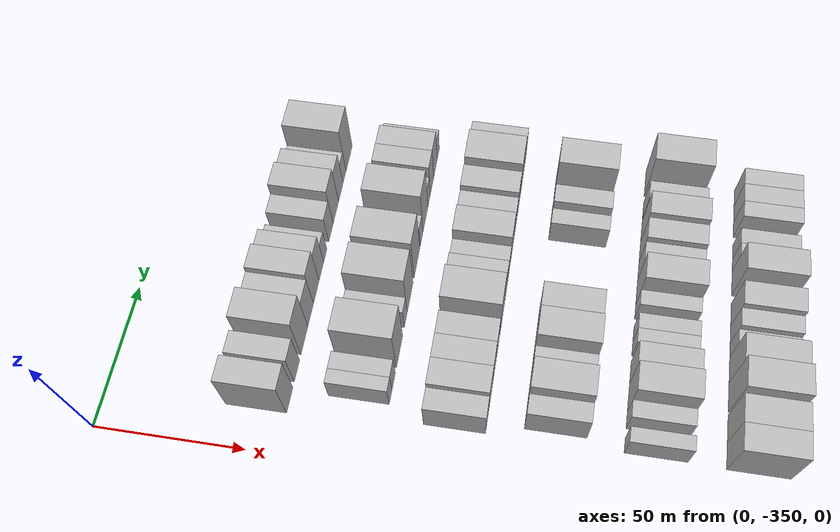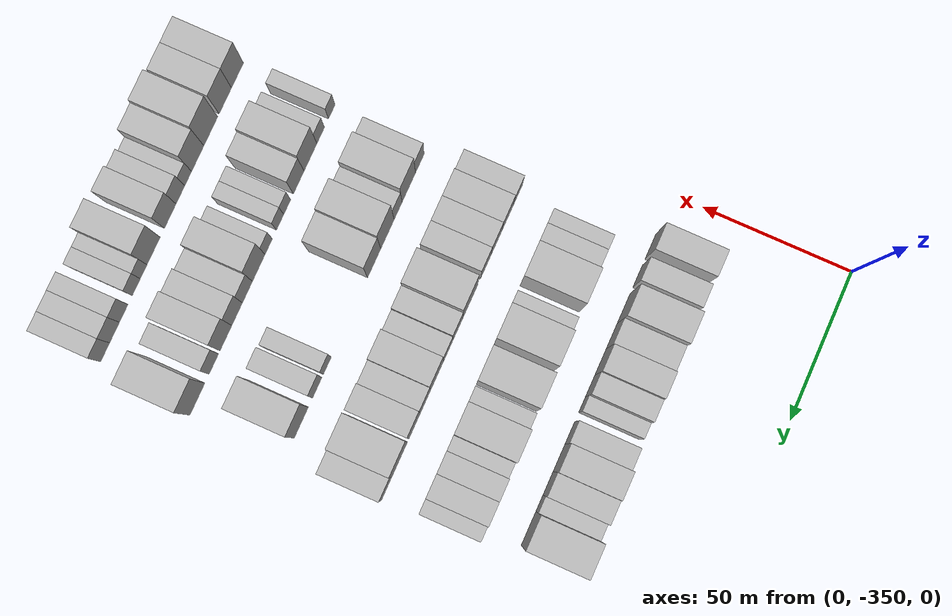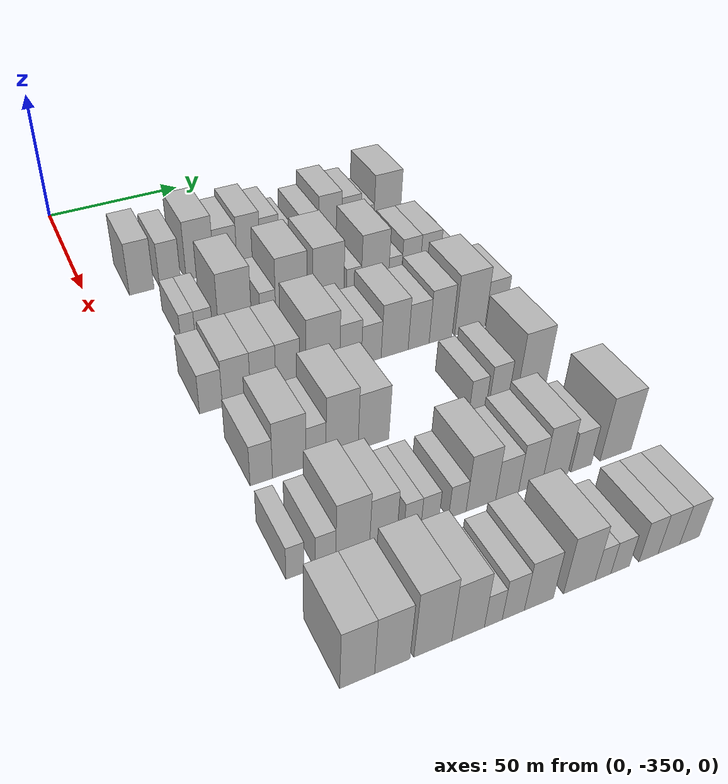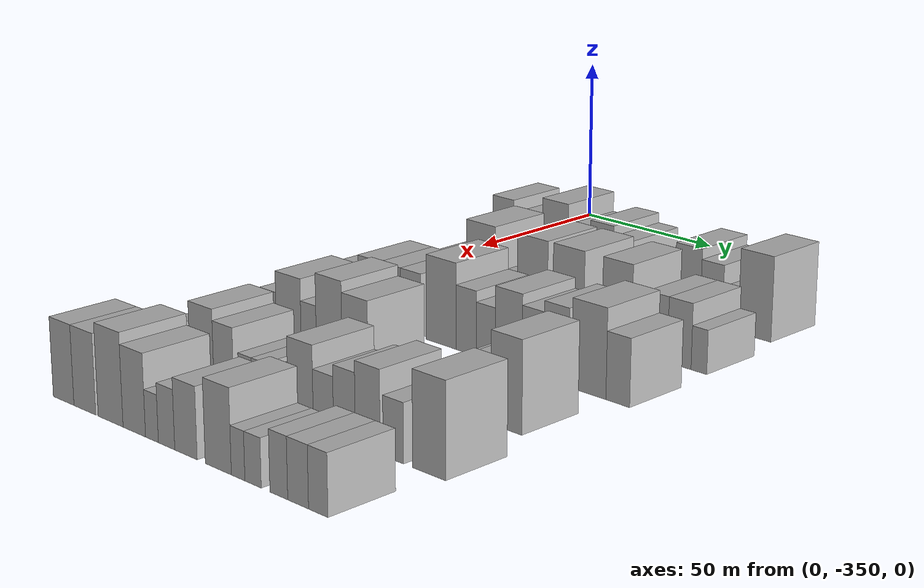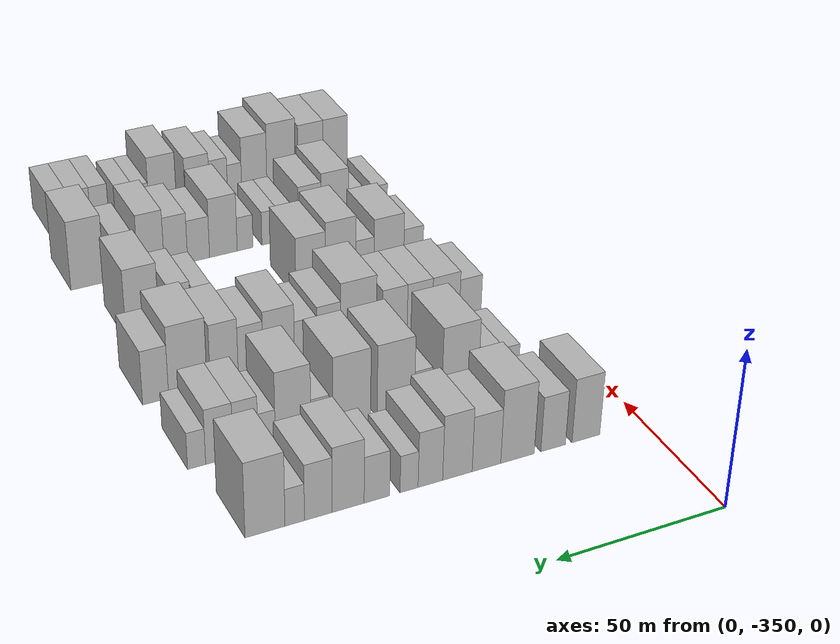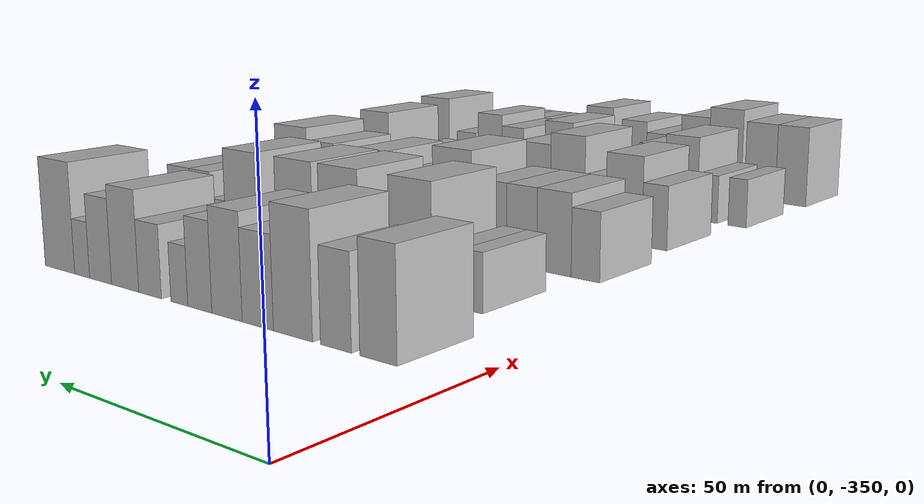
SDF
<sdf version="1.6">
 <world name="default">
  <model name="building_25">
   <static>1</static>
   <pose>50.0000 -331.8729 0 0.000000 0.000000 0.000000</pose>
   <link name="link">
    <pose>0 0 10.50 0 0 0</pose>
    <collision name="collision"><geometry><box><size>20.0000 8.7090 21.0000</size></box></geometry></collision>
    <visual name="visual">
     <cast_shadows>0</cast_shadows>
     <geometry><box><size>20.0000 8.7090 21.0000</size></box></geometry>
     <material>
      <script>
       <uri>model://HANNAS_wall/materials/scripts</uri>
       <uri>model://HANNAS_wall/materials/textures</uri>
       <name>vrc/HANNAS_wall</name>
      </script>
     </material>
    </visual>
   </link>
  </model>
  <model name="building_26">
   <static>1</static>
   <pose>50.0000 -321.7021 0 0.000000 0.000000 0.000000</pose>
   <link name="link">
    <pose>0 0 9.00 0 0 0</pose>
    <collision name="collision"><geometry><box><size>20.0000 7.6327 18.0000</size></box></geometry></collision>
    <visual name="visual">
     <cast_shadows>0</cast_shadows>
     <geometry><box><size>20.0000 7.6327 18.0000</size></box></geometry>
     <material>
      <script>
       <uri>model://HANNAS_wall/materials/scripts</uri>
       <uri>model://HANNAS_wall/materials/textures</uri>
       <name>vrc/HANNAS_wall</name>
      </script>
     </material>
    </visual>
   </link>
  </model>
  <model name="building_27">
   <static>1</static>
   <pose>50.0000 -310.7691 0 0.000000 0.000000 0.000000</pose>
   <link name="link">
    <pose>0 0 12.00 0 0 0</pose>
    <collision name="collision"><geometry><box><size>20.0000 10.2333 24.0000</size></box></geometry></collision>
    <visual name="visual">
     <cast_shadows>0</cast_shadows>
     <geometry><box><size>20.0000 10.2333 24.0000</size></box></geometry>
     <material>
      <script>
       <uri>model://HANNAS_wall/materials/scripts</uri>
       <uri>model://HANNAS_wall/materials/textures</uri>
       <name>vrc/HANNAS_wall</name>
      </script>
     </material>
    </visual>
   </link>
  </model>
  <model name="building_28">
   <static>1</static>
   <pose>50.0000 -301.3452 0 0.000000 0.000000 0.000000</pose>
   <link name="link">
    <pose>0 0 9.00 0 0 0</pose>
    <collision name="collision"><geometry><box><size>20.0000 8.6145 18.0000</size></box></geometry></collision>
    <visual name="visual">
     <cast_shadows>0</cast_shadows>
     <geometry><box><size>20.0000 8.6145 18.0000</size></box></geometry>
     <material>
      <script>
       <uri>model://HANNAS_wall/materials/scripts</uri>
       <uri>model://HANNAS_wall/materials/textures</uri>
       <name>vrc/HANNAS_wall</name>
      </script>
     </material>
    </visual>
   </link>
  </model>
  <model name="building_29">
   <static>1</static>
   <pose>50.0000 -292.6635 0 0.000000 0.000000 0.000000</pose>
   <link name="link">
    <pose>0 0 10.50 0 0 0</pose>
    <collision name="collision"><geometry><box><size>20.0000 8.7487 21.0000</size></box></geometry></collision>
    <visual name="visual">
     <cast_shadows>0</cast_shadows>
     <geometry><box><size>20.0000 8.7487 21.0000</size></box></geometry>
     <material>
      <script>
       <uri>model://HANNAS_wall/materials/scripts</uri>
       <uri>model://HANNAS_wall/materials/textures</uri>
       <name>vrc/HANNAS_wall</name>
      </script>
     </material>
    </visual>
   </link>
  </model>
  <model name="building_30">
   <static>1</static>
   <pose>50.0000 -284.6700 0 0.000000 0.000000 0.000000</pose>
   <link name="link">
    <pose>0 0 9.00 0 0 0</pose>
    <collision name="collision"><geometry><box><size>20.0000 7.2383 18.0000</size></box></geometry></collision>
    <visual name="visual">
     <cast_shadows>0</cast_shadows>
     <geometry><box><size>20.0000 7.2383 18.0000</size></box></geometry>
     <material>
      <script>
       <uri>model://HANNAS_wall/materials/scripts</uri>
       <uri>model://HANNAS_wall/materials/textures</uri>
       <name>vrc/HANNAS_wall</name>
      </script>
     </material>
    </visual>
   </link>
  </model>
  <model name="building_31">
   <static>1</static>
   <pose>50.0000 -278.4286 0 0.000000 0.000000 0.000000</pose>
   <link name="link">
    <pose>0 0 6.00 0 0 0</pose>
    <collision name="collision"><geometry><box><size>20.0000 5.2446 12.0000</size></box></geometry></collision>
    <visual name="visual">
     <cast_shadows>0</cast_shadows>
     <geometry><box><size>20.0000 5.2446 12.0000</size></box></geometry>
     <material>
      <script>
       <uri>model://HANNAS_wall/materials/scripts</uri>
       <uri>model://HANNAS_wall/materials/textures</uri>
       <name>vrc/HANNAS_wall</name>
      </script>
     </material>
    </visual>
   </link>
  </model>
  <model name="building_32">
   <static>1</static>
   <pose>50.0000 -269.1269 0 0.000000 0.000000 0.000000</pose>
   <link name="link">
    <pose>0 0 7.50 0 0 0</pose>
    <collision name="collision"><geometry><box><size>20.0000 7.3586 15.0000</size></box></geometry></collision>
    <visual name="visual">
     <cast_shadows>0</cast_shadows>
     <geometry><box><size>20.0000 7.3586 15.0000</size></box></geometry>
     <material>
      <script>
       <uri>model://HANNAS_wall/materials/scripts</uri>
       <uri>model://HANNAS_wall/materials/textures</uri>
       <name>vrc/HANNAS_wall</name>
      </script>
     </material>
    </visual>
   </link>
  </model>
  <model name="building_33">
   <static>1</static>
   <pose>50.0000 -260.8654 0 0.000000 0.000000 0.000000</pose>
   <link name="link">
    <pose>0 0 10.50 0 0 0</pose>
    <collision name="collision"><geometry><box><size>20.0000 9.1644 21.0000</size></box></geometry></collision>
    <visual name="visual">
     <cast_shadows>0</cast_shadows>
     <geometry><box><size>20.0000 9.1644 21.0000</size></box></geometry>
     <material>
      <script>
       <uri>model://HANNAS_wall/materials/scripts</uri>
       <uri>model://HANNAS_wall/materials/textures</uri>
       <name>vrc/HANNAS_wall</name>
      </script>
     </material>
    </visual>
   </link>
  </model>
  <model name="building_34">
   <static>1</static>
   <pose>50.0000 -252.4219 0 0.000000 0.000000 0.000000</pose>
   <link name="link">
    <pose>0 0 9.00 0 0 0</pose>
    <collision name="collision"><geometry><box><size>20.0000 7.7228 18.0000</size></box></geometry></collision>
    <visual name="visual">
     <cast_shadows>0</cast_shadows>
     <geometry><box><size>20.0000 7.7228 18.0000</size></box></geometry>
     <material>
      <script>
       <uri>model://HANNAS_wall/materials/scripts</uri>
       <uri>model://HANNAS_wall/materials/textures</uri>
       <name>vrc/HANNAS_wall</name>
      </script>
     </material>
    </visual>
   </link>
  </model>
  <model name="building_35">
   <static>1</static>
   <pose>50.0000 -245.8638 0 0.000000 0.000000 0.000000</pose>
   <link name="link">
    <pose>0 0 6.00 0 0 0</pose>
    <collision name="collision"><geometry><box><size>20.0000 5.3933 12.0000</size></box></geometry></collision>
    <visual name="visual">
     <cast_shadows>0</cast_shadows>
     <geometry><box><size>20.0000 5.3933 12.0000</size></box></geometry>
     <material>
      <script>
       <uri>model://HANNAS_wall/materials/scripts</uri>
       <uri>model://HANNAS_wall/materials/textures</uri>
       <name>vrc/HANNAS_wall</name>
      </script>
     </material>
    </visual>
   </link>
  </model>
  <model name="building_36">
   <static>1</static>
   <pose>50.0000 -237.6464 0 0.000000 0.000000 0.000000</pose>
   <link name="link">
    <pose>0 0 12.00 0 0 0</pose>
    <collision name="collision"><geometry><box><size>20.0000 11.0416 24.0000</size></box></geometry></collision>
    <visual name="visual">
     <cast_shadows>0</cast_shadows>
     <geometry><box><size>20.0000 11.0416 24.0000</size></box></geometry>
     <material>
      <script>
       <uri>model://HANNAS_wall/materials/scripts</uri>
       <uri>model://HANNAS_wall/materials/textures</uri>
       <name>vrc/HANNAS_wall</name>
      </script>
     </material>
    </visual>
   </link>
  </model>
  <model name="building_147">
   <static>1</static>
   <pose>82.0000 -326.0316 0 0.000000 0.000000 0.000000</pose>
   <link name="link">
    <pose>0 0 6.00 0 0 0</pose>
    <collision name="collision"><geometry><box><size>20.0000 4.8521 12.0000</size></box></geometry></collision>
    <visual name="visual">
     <cast_shadows>0</cast_shadows>
     <geometry><box><size>20.0000 4.8521 12.0000</size></box></geometry>
     <material>
      <script>
       <uri>model://HANNAS_wall/materials/scripts</uri>
       <uri>model://HANNAS_wall/materials/textures</uri>
       <name>vrc/HANNAS_wall</name>
      </script>
     </material>
    </visual>
   </link>
  </model>
  <model name="building_148">
   <static>1</static>
   <pose>82.0000 -320.6335 0 0.000000 0.000000 0.000000</pose>
   <link name="link">
    <pose>0 0 6.00 0 0 0</pose>
    <collision name="collision"><geometry><box><size>20.0000 5.9439 12.0000</size></box></geometry></collision>
    <visual name="visual">
     <cast_shadows>0</cast_shadows>
     <geometry><box><size>20.0000 5.9439 12.0000</size></box></geometry>
     <material>
      <script>
       <uri>model://HANNAS_wall/materials/scripts</uri>
       <uri>model://HANNAS_wall/materials/textures</uri>
       <name>vrc/HANNAS_wall</name>
      </script>
     </material>
    </visual>
   </link>
  </model>
  <model name="building_149">
   <static>1</static>
   <pose>82.0000 -309.9343 0 0.000000 0.000000 0.000000</pose>
   <link name="link">
    <pose>0 0 12.00 0 0 0</pose>
    <collision name="collision"><geometry><box><size>20.0000 11.4546 24.0000</size></box></geometry></collision>
    <visual name="visual">
     <cast_shadows>0</cast_shadows>
     <geometry><box><size>20.0000 11.4546 24.0000</size></box></geometry>
     <material>
      <script>
       <uri>model://HANNAS_wall/materials/scripts</uri>
       <uri>model://HANNAS_wall/materials/textures</uri>
       <name>vrc/HANNAS_wall</name>
      </script>
     </material>
    </visual>
   </link>
  </model>
  <model name="building_150">
   <static>1</static>
   <pose>82.0000 -298.4399 0 0.000000 0.000000 0.000000</pose>
   <link name="link">
    <pose>0 0 6.00 0 0 0</pose>
    <collision name="collision"><geometry><box><size>20.0000 5.5341 12.0000</size></box></geometry></collision>
    <visual name="visual">
     <cast_shadows>0</cast_shadows>
     <geometry><box><size>20.0000 5.5341 12.0000</size></box></geometry>
     <material>
      <script>
       <uri>model://HANNAS_wall/materials/scripts</uri>
       <uri>model://HANNAS_wall/materials/textures</uri>
       <name>vrc/HANNAS_wall</name>
      </script>
     </material>
    </visual>
   </link>
  </model>
  <model name="building_151">
   <static>1</static>
   <pose>82.0000 -289.9581 0 0.000000 0.000000 0.000000</pose>
   <link name="link">
    <pose>0 0 12.00 0 0 0</pose>
    <collision name="collision"><geometry><box><size>20.0000 11.4295 24.0000</size></box></geometry></collision>
    <visual name="visual">
     <cast_shadows>0</cast_shadows>
     <geometry><box><size>20.0000 11.4295 24.0000</size></box></geometry>
     <material>
      <script>
       <uri>model://HANNAS_wall/materials/scripts</uri>
       <uri>model://HANNAS_wall/materials/textures</uri>
       <name>vrc/HANNAS_wall</name>
      </script>
     </material>
    </visual>
   </link>
  </model>
  <model name="building_152">
   <static>1</static>
   <pose>82.0000 -276.5438 0 0.000000 0.000000 0.000000</pose>
   <link name="link">
    <pose>0 0 12.00 0 0 0</pose>
    <collision name="collision"><geometry><box><size>20.0000 11.3991 24.0000</size></box></geometry></collision>
    <visual name="visual">
     <cast_shadows>0</cast_shadows>
     <geometry><box><size>20.0000 11.3991 24.0000</size></box></geometry>
     <material>
      <script>
       <uri>model://HANNAS_wall/materials/scripts</uri>
       <uri>model://HANNAS_wall/materials/textures</uri>
       <name>vrc/HANNAS_wall</name>
      </script>
     </material>
    </visual>
   </link>
  </model>
  <model name="building_153">
   <static>1</static>
   <pose>82.0000 -267.0830 0 0.000000 0.000000 0.000000</pose>
   <link name="link">
    <pose>0 0 6.00 0 0 0</pose>
    <collision name="collision"><geometry><box><size>20.0000 5.5226 12.0000</size></box></geometry></collision>
    <visual name="visual">
     <cast_shadows>0</cast_shadows>
     <geometry><box><size>20.0000 5.5226 12.0000</size></box></geometry>
     <material>
      <script>
       <uri>model://HANNAS_wall/materials/scripts</uri>
       <uri>model://HANNAS_wall/materials/textures</uri>
       <name>vrc/HANNAS_wall</name>
      </script>
     </material>
    </visual>
   </link>
  </model>
  <model name="building_154">
   <static>1</static>
   <pose>82.0000 -259.1007 0 0.000000 0.000000 0.000000</pose>
   <link name="link">
    <pose>0 0 12.00 0 0 0</pose>
    <collision name="collision"><geometry><box><size>20.0000 10.4421 24.0000</size></box></geometry></collision>
    <visual name="visual">
     <cast_shadows>0</cast_shadows>
     <geometry><box><size>20.0000 10.4421 24.0000</size></box></geometry>
     <material>
      <script>
       <uri>model://HANNAS_wall/materials/scripts</uri>
       <uri>model://HANNAS_wall/materials/textures</uri>
       <name>vrc/HANNAS_wall</name>
      </script>
     </material>
    </visual>
   </link>
  </model>
  <model name="building_155">
   <static>1</static>
   <pose>82.0000 -251.3705 0 0.000000 0.000000 0.000000</pose>
   <link name="link">
    <pose>0 0 6.00 0 0 0</pose>
    <collision name="collision"><geometry><box><size>20.0000 5.0182 12.0000</size></box></geometry></collision>
    <visual name="visual">
     <cast_shadows>0</cast_shadows>
     <geometry><box><size>20.0000 5.0182 12.0000</size></box></geometry>
     <material>
      <script>
       <uri>model://HANNAS_wall/materials/scripts</uri>
       <uri>model://HANNAS_wall/materials/textures</uri>
       <name>vrc/HANNAS_wall</name>
      </script>
     </material>
    </visual>
   </link>
  </model>
  <model name="building_156">
   <static>1</static>
   <pose>82.0000 -245.2243 0 0.000000 0.000000 0.000000</pose>
   <link name="link">
    <pose>0 0 9.00 0 0 0</pose>
    <collision name="collision"><geometry><box><size>20.0000 7.2744 18.0000</size></box></geometry></collision>
    <visual name="visual">
     <cast_shadows>0</cast_shadows>
     <geometry><box><size>20.0000 7.2744 18.0000</size></box></geometry>
     <material>
      <script>
       <uri>model://HANNAS_wall/materials/scripts</uri>
       <uri>model://HANNAS_wall/materials/textures</uri>
       <name>vrc/HANNAS_wall</name>
      </script>
     </material>
    </visual>
   </link>
  </model>
  <model name="building_157">
   <static>1</static>
   <pose>82.0000 -237.6555 0 0.000000 0.000000 0.000000</pose>
   <link name="link">
    <pose>0 0 9.00 0 0 0</pose>
    <collision name="collision"><geometry><box><size>20.0000 7.8633 18.0000</size></box></geometry></collision>
    <visual name="visual">
     <cast_shadows>0</cast_shadows>
     <geometry><box><size>20.0000 7.8633 18.0000</size></box></geometry>
     <material>
      <script>
       <uri>model://HANNAS_wall/materials/scripts</uri>
       <uri>model://HANNAS_wall/materials/textures</uri>
       <name>vrc/HANNAS_wall</name>
      </script>
     </material>
    </visual>
   </link>
  </model>
  <model name="building_158">
   <static>1</static>
   <pose>82.0000 -231.1506 0 0.000000 0.000000 0.000000</pose>
   <link name="link">
    <pose>0 0 6.00 0 0 0</pose>
    <collision name="collision"><geometry><box><size>20.0000 5.1464 12.0000</size></box></geometry></collision>
    <visual name="visual">
     <cast_shadows>0</cast_shadows>
     <geometry><box><size>20.0000 5.1464 12.0000</size></box></geometry>
     <material>
      <script>
       <uri>model://HANNAS_wall/materials/scripts</uri>
       <uri>model://HANNAS_wall/materials/textures</uri>
       <name>vrc/HANNAS_wall</name>
      </script>
     </material>
    </visual>
   </link>
  </model>
  <model name="building_267">
   <static>1</static>
   <pose>114.0000 -329.7780 0 0.000000 0.000000 0.000000</pose>
   <link name="link">
    <pose>0 0 7.50 0 0 0</pose>
    <collision name="collision"><geometry><box><size>20.0000 7.2047 15.0000</size></box></geometry></collision>
    <visual name="visual">
     <cast_shadows>0</cast_shadows>
     <geometry><box><size>20.0000 7.2047 15.0000</size></box></geometry>
     <material>
      <script>
       <uri>model://HANNAS_wall/materials/scripts</uri>
       <uri>model://HANNAS_wall/materials/textures</uri>
       <name>vrc/HANNAS_wall</name>
      </script>
     </material>
    </visual>
   </link>
  </model>
  <model name="building_268">
   <static>1</static>
   <pose>114.0000 -321.6863 0 0.000000 0.000000 0.000000</pose>
   <link name="link">
    <pose>0 0 9.00 0 0 0</pose>
    <collision name="collision"><geometry><box><size>20.0000 8.9786 18.0000</size></box></geometry></collision>
    <visual name="visual">
     <cast_shadows>0</cast_shadows>
     <geometry><box><size>20.0000 8.9786 18.0000</size></box></geometry>
     <material>
      <script>
       <uri>model://HANNAS_wall/materials/scripts</uri>
       <uri>model://HANNAS_wall/materials/textures</uri>
       <name>vrc/HANNAS_wall</name>
      </script>
     </material>
    </visual>
   </link>
  </model>
  <model name="building_269">
   <static>1</static>
   <pose>114.0000 -313.0940 0 0.000000 0.000000 0.000000</pose>
   <link name="link">
    <pose>0 0 9.00 0 0 0</pose>
    <collision name="collision"><geometry><box><size>20.0000 8.2061 18.0000</size></box></geometry></collision>
    <visual name="visual">
     <cast_shadows>0</cast_shadows>
     <geometry><box><size>20.0000 8.2061 18.0000</size></box></geometry>
     <material>
      <script>
       <uri>model://HANNAS_wall/materials/scripts</uri>
       <uri>model://HANNAS_wall/materials/textures</uri>
       <name>vrc/HANNAS_wall</name>
      </script>
     </material>
    </visual>
   </link>
  </model>
  <model name="building_270">
   <static>1</static>
   <pose>114.0000 -305.0264 0 0.000000 0.000000 0.000000</pose>
   <link name="link">
    <pose>0 0 9.00 0 0 0</pose>
    <collision name="collision"><geometry><box><size>20.0000 7.9290 18.0000</size></box></geometry></collision>
    <visual name="visual">
     <cast_shadows>0</cast_shadows>
     <geometry><box><size>20.0000 7.9290 18.0000</size></box></geometry>
     <material>
      <script>
       <uri>model://HANNAS_wall/materials/scripts</uri>
       <uri>model://HANNAS_wall/materials/textures</uri>
       <name>vrc/HANNAS_wall</name>
      </script>
     </material>
    </visual>
   </link>
  </model>
  <model name="building_271">
   <static>1</static>
   <pose>114.0000 -293.3675 0 0.000000 0.000000 0.000000</pose>
   <link name="link">
    <pose>0 0 12.00 0 0 0</pose>
    <collision name="collision"><geometry><box><size>20.0000 11.3887 24.0000</size></box></geometry></collision>
    <visual name="visual">
     <cast_shadows>0</cast_shadows>
     <geometry><box><size>20.0000 11.3887 24.0000</size></box></geometry>
     <material>
      <script>
       <uri>model://HANNAS_wall/materials/scripts</uri>
       <uri>model://HANNAS_wall/materials/textures</uri>
       <name>vrc/HANNAS_wall</name>
      </script>
     </material>
    </visual>
   </link>
  </model>
  <model name="building_272">
   <static>1</static>
   <pose>114.0000 -283.9259 0 0.000000 0.000000 0.000000</pose>
   <link name="link">
    <pose>0 0 9.00 0 0 0</pose>
    <collision name="collision"><geometry><box><size>20.0000 7.4944 18.0000</size></box></geometry></collision>
    <visual name="visual">
     <cast_shadows>0</cast_shadows>
     <geometry><box><size>20.0000 7.4944 18.0000</size></box></geometry>
     <material>
      <script>
       <uri>model://HANNAS_wall/materials/scripts</uri>
       <uri>model://HANNAS_wall/materials/textures</uri>
       <name>vrc/HANNAS_wall</name>
      </script>
     </material>
    </visual>
   </link>
  </model>
  <model name="building_273">
   <static>1</static>
   <pose>114.0000 -276.6915 0 0.000000 0.000000 0.000000</pose>
   <link name="link">
    <pose>0 0 7.50 0 0 0</pose>
    <collision name="collision"><geometry><box><size>20.0000 6.9744 15.0000</size></box></geometry></collision>
    <visual name="visual">
     <cast_shadows>0</cast_shadows>
     <geometry><box><size>20.0000 6.9744 15.0000</size></box></geometry>
     <material>
      <script>
       <uri>model://HANNAS_wall/materials/scripts</uri>
       <uri>model://HANNAS_wall/materials/textures</uri>
       <name>vrc/HANNAS_wall</name>
      </script>
     </material>
    </visual>
   </link>
  </model>
  <model name="building_274">
   <static>1</static>
   <pose>114.0000 -268.3750 0 0.000000 0.000000 0.000000</pose>
   <link name="link">
    <pose>0 0 10.50 0 0 0</pose>
    <collision name="collision"><geometry><box><size>20.0000 9.6587 21.0000</size></box></geometry></collision>
    <visual name="visual">
     <cast_shadows>0</cast_shadows>
     <geometry><box><size>20.0000 9.6587 21.0000</size></box></geometry>
     <material>
      <script>
       <uri>model://HANNAS_wall/materials/scripts</uri>
       <uri>model://HANNAS_wall/materials/textures</uri>
       <name>vrc/HANNAS_wall</name>
      </script>
     </material>
    </visual>
   </link>
  </model>
  <model name="building_275">
   <static>1</static>
   <pose>114.0000 -259.7305 0 0.000000 0.000000 0.000000</pose>
   <link name="link">
    <pose>0 0 9.00 0 0 0</pose>
    <collision name="collision"><geometry><box><size>20.0000 7.6303 18.0000</size></box></geometry></collision>
    <visual name="visual">
     <cast_shadows>0</cast_shadows>
     <geometry><box><size>20.0000 7.6303 18.0000</size></box></geometry>
     <material>
      <script>
       <uri>model://HANNAS_wall/materials/scripts</uri>
       <uri>model://HANNAS_wall/materials/textures</uri>
       <name>vrc/HANNAS_wall</name>
      </script>
     </material>
    </visual>
   </link>
  </model>
  <model name="building_276">
   <static>1</static>
   <pose>114.0000 -251.6764 0 0.000000 0.000000 0.000000</pose>
   <link name="link">
    <pose>0 0 10.50 0 0 0</pose>
    <collision name="collision"><geometry><box><size>20.0000 8.4777 21.0000</size></box></geometry></collision>
    <visual name="visual">
     <cast_shadows>0</cast_shadows>
     <geometry><box><size>20.0000 8.4777 21.0000</size></box></geometry>
     <material>
      <script>
       <uri>model://HANNAS_wall/materials/scripts</uri>
       <uri>model://HANNAS_wall/materials/textures</uri>
       <name>vrc/HANNAS_wall</name>
      </script>
     </material>
    </visual>
   </link>
  </model>
  <model name="building_277">
   <static>1</static>
   <pose>114.0000 -240.6927 0 0.000000 0.000000 0.000000</pose>
   <link name="link">
    <pose>0 0 12.00 0 0 0</pose>
    <collision name="collision"><geometry><box><size>20.0000 11.4897 24.0000</size></box></geometry></collision>
    <visual name="visual">
     <cast_shadows>0</cast_shadows>
     <geometry><box><size>20.0000 11.4897 24.0000</size></box></geometry>
     <material>
      <script>
       <uri>model://HANNAS_wall/materials/scripts</uri>
       <uri>model://HANNAS_wall/materials/textures</uri>
       <name>vrc/HANNAS_wall</name>
      </script>
     </material>
    </visual>
   </link>
  </model>
  <model name="building_278">
   <static>1</static>
   <pose>114.0000 -231.0869 0 0.000000 0.000000 0.000000</pose>
   <link name="link">
    <pose>0 0 9.00 0 0 0</pose>
    <collision name="collision"><geometry><box><size>20.0000 7.7219 18.0000</size></box></geometry></collision>
    <visual name="visual">
     <cast_shadows>0</cast_shadows>
     <geometry><box><size>20.0000 7.7219 18.0000</size></box></geometry>
     <material>
      <script>
       <uri>model://HANNAS_wall/materials/scripts</uri>
       <uri>model://HANNAS_wall/materials/textures</uri>
       <name>vrc/HANNAS_wall</name>
      </script>
     </material>
    </visual>
   </link>
  </model>
  <model name="building_385">
   <static>1</static>
   <pose>146.0000 -326.6969 0 0.000000 0.000000 0.000000</pose>
   <link name="link">
    <pose>0 0 7.50 0 0 0</pose>
    <collision name="collision"><geometry><box><size>20.0000 6.6117 15.0000</size></box></geometry></collision>
    <visual name="visual">
     <cast_shadows>0</cast_shadows>
     <geometry><box><size>20.0000 6.6117 15.0000</size></box></geometry>
     <material>
      <script>
       <uri>model://HANNAS_wall/materials/scripts</uri>
       <uri>model://HANNAS_wall/materials/textures</uri>
       <name>vrc/HANNAS_wall</name>
      </script>
     </material>
    </visual>
   </link>
  </model>
  <model name="building_386">
   <static>1</static>
   <pose>146.0000 -318.3543 0 0.000000 0.000000 0.000000</pose>
   <link name="link">
    <pose>0 0 10.50 0 0 0</pose>
    <collision name="collision"><geometry><box><size>20.0000 10.0735 21.0000</size></box></geometry></collision>
    <visual name="visual">
     <cast_shadows>0</cast_shadows>
     <geometry><box><size>20.0000 10.0735 21.0000</size></box></geometry>
     <material>
      <script>
       <uri>model://HANNAS_wall/materials/scripts</uri>
       <uri>model://HANNAS_wall/materials/textures</uri>
       <name>vrc/HANNAS_wall</name>
      </script>
     </material>
    </visual>
   </link>
  </model>
  <model name="building_387">
   <static>1</static>
   <pose>146.0000 -310.2874 0 0.000000 0.000000 0.000000</pose>
   <link name="link">
    <pose>0 0 7.50 0 0 0</pose>
    <collision name="collision"><geometry><box><size>20.0000 6.0604 15.0000</size></box></geometry></collision>
    <visual name="visual">
     <cast_shadows>0</cast_shadows>
     <geometry><box><size>20.0000 6.0604 15.0000</size></box></geometry>
     <material>
      <script>
       <uri>model://HANNAS_wall/materials/scripts</uri>
       <uri>model://HANNAS_wall/materials/textures</uri>
       <name>vrc/HANNAS_wall</name>
      </script>
     </material>
    </visual>
   </link>
  </model>
  <model name="building_388">
   <static>1</static>
   <pose>146.0000 -302.2309 0 0.000000 0.000000 0.000000</pose>
   <link name="link">
    <pose>0 0 12.00 0 0 0</pose>
    <collision name="collision"><geometry><box><size>20.0000 10.0525 24.0000</size></box></geometry></collision>
    <visual name="visual">
     <cast_shadows>0</cast_shadows>
     <geometry><box><size>20.0000 10.0525 24.0000</size></box></geometry>
     <material>
      <script>
       <uri>model://HANNAS_wall/materials/scripts</uri>
       <uri>model://HANNAS_wall/materials/textures</uri>
       <name>vrc/HANNAS_wall</name>
      </script>
     </material>
    </visual>
   </link>
  </model>
  <model name="building_389">
   <static>1</static>
   <pose>146.0000 -292.2813 0 0.000000 0.000000 0.000000</pose>
   <link name="link">
    <pose>0 0 10.50 0 0 0</pose>
    <collision name="collision"><geometry><box><size>20.0000 9.8467 21.0000</size></box></geometry></collision>
    <visual name="visual">
     <cast_shadows>0</cast_shadows>
     <geometry><box><size>20.0000 9.8467 21.0000</size></box></geometry>
     <material>
      <script>
       <uri>model://HANNAS_wall/materials/scripts</uri>
       <uri>model://HANNAS_wall/materials/textures</uri>
       <name>vrc/HANNAS_wall</name>
      </script>
     </material>
    </visual>
   </link>
  </model>
  <model name="building_390">
   <static>1</static>
   <pose>146.0000 -257.5607 0 0.000000 0.000000 0.000000</pose>
   <link name="link">
    <pose>0 0 6.00 0 0 0</pose>
    <collision name="collision"><geometry><box><size>20.0000 5.8648 12.0000</size></box></geometry></collision>
    <visual name="visual">
     <cast_shadows>0</cast_shadows>
     <geometry><box><size>20.0000 5.8648 12.0000</size></box></geometry>
     <material>
      <script>
       <uri>model://HANNAS_wall/materials/scripts</uri>
       <uri>model://HANNAS_wall/materials/textures</uri>
       <name>vrc/HANNAS_wall</name>
      </script>
     </material>
    </visual>
   </link>
  </model>
  <model name="building_391">
   <static>1</static>
   <pose>146.0000 -250.1890 0 0.000000 0.000000 0.000000</pose>
   <link name="link">
    <pose>0 0 7.50 0 0 0</pose>
    <collision name="collision"><geometry><box><size>20.0000 6.8784 15.0000</size></box></geometry></collision>
    <visual name="visual">
     <cast_shadows>0</cast_shadows>
     <geometry><box><size>20.0000 6.8784 15.0000</size></box></geometry>
     <material>
      <script>
       <uri>model://HANNAS_wall/materials/scripts</uri>
       <uri>model://HANNAS_wall/materials/textures</uri>
       <name>vrc/HANNAS_wall</name>
      </script>
     </material>
    </visual>
   </link>
  </model>
  <model name="building_392">
   <static>1</static>
   <pose>146.0000 -238.5994 0 0.000000 0.000000 0.000000</pose>
   <link name="link">
    <pose>0 0 12.00 0 0 0</pose>
    <collision name="collision"><geometry><box><size>20.0000 10.3008 24.0000</size></box></geometry></collision>
    <visual name="visual">
     <cast_shadows>0</cast_shadows>
     <geometry><box><size>20.0000 10.3008 24.0000</size></box></geometry>
     <material>
      <script>
       <uri>model://HANNAS_wall/materials/scripts</uri>
       <uri>model://HANNAS_wall/materials/textures</uri>
       <name>vrc/HANNAS_wall</name>
      </script>
     </material>
    </visual>
   </link>
  </model>
  <model name="building_502">
   <static>1</static>
   <pose>178.0000 -330.5785 0 0.000000 0.000000 0.000000</pose>
   <link name="link">
    <pose>0 0 6.00 0 0 0</pose>
    <collision name="collision"><geometry><box><size>20.0000 4.9640 12.0000</size></box></geometry></collision>
    <visual name="visual">
     <cast_shadows>0</cast_shadows>
     <geometry><box><size>20.0000 4.9640 12.0000</size></box></geometry>
     <material>
      <script>
       <uri>model://HANNAS_wall/materials/scripts</uri>
       <uri>model://HANNAS_wall/materials/textures</uri>
       <name>vrc/HANNAS_wall</name>
      </script>
     </material>
    </visual>
   </link>
  </model>
  <model name="building_503">
   <static>1</static>
   <pose>178.0000 -322.2564 0 0.000000 0.000000 0.000000</pose>
   <link name="link">
    <pose>0 0 6.00 0 0 0</pose>
    <collision name="collision"><geometry><box><size>20.0000 5.6801 12.0000</size></box></geometry></collision>
    <visual name="visual">
     <cast_shadows>0</cast_shadows>
     <geometry><box><size>20.0000 5.6801 12.0000</size></box></geometry>
     <material>
      <script>
       <uri>model://HANNAS_wall/materials/scripts</uri>
       <uri>model://HANNAS_wall/materials/textures</uri>
       <name>vrc/HANNAS_wall</name>
      </script>
     </material>
    </visual>
   </link>
  </model>
  <model name="building_504">
   <static>1</static>
   <pose>178.0000 -314.6193 0 0.000000 0.000000 0.000000</pose>
   <link name="link">
    <pose>0 0 10.50 0 0 0</pose>
    <collision name="collision"><geometry><box><size>20.0000 9.5942 21.0000</size></box></geometry></collision>
    <visual name="visual">
     <cast_shadows>0</cast_shadows>
     <geometry><box><size>20.0000 9.5942 21.0000</size></box></geometry>
     <material>
      <script>
       <uri>model://HANNAS_wall/materials/scripts</uri>
       <uri>model://HANNAS_wall/materials/textures</uri>
       <name>vrc/HANNAS_wall</name>
      </script>
     </material>
    </visual>
   </link>
  </model>
  <model name="building_505">
   <static>1</static>
   <pose>178.0000 -305.8702 0 0.000000 0.000000 0.000000</pose>
   <link name="link">
    <pose>0 0 9.00 0 0 0</pose>
    <collision name="collision"><geometry><box><size>20.0000 7.9040 18.0000</size></box></geometry></collision>
    <visual name="visual">
     <cast_shadows>0</cast_shadows>
     <geometry><box><size>20.0000 7.9040 18.0000</size></box></geometry>
     <material>
      <script>
       <uri>model://HANNAS_wall/materials/scripts</uri>
       <uri>model://HANNAS_wall/materials/textures</uri>
       <name>vrc/HANNAS_wall</name>
      </script>
     </material>
    </visual>
   </link>
  </model>
  <model name="building_506">
   <static>1</static>
   <pose>178.0000 -297.3613 0 0.000000 0.000000 0.000000</pose>
   <link name="link">
    <pose>0 0 6.00 0 0 0</pose>
    <collision name="collision"><geometry><box><size>20.0000 5.1138 12.0000</size></box></geometry></collision>
    <visual name="visual">
     <cast_shadows>0</cast_shadows>
     <geometry><box><size>20.0000 5.1138 12.0000</size></box></geometry>
     <material>
      <script>
       <uri>model://HANNAS_wall/materials/scripts</uri>
       <uri>model://HANNAS_wall/materials/textures</uri>
       <name>vrc/HANNAS_wall</name>
      </script>
     </material>
    </visual>
   </link>
  </model>
  <model name="building_507">
   <static>1</static>
   <pose>178.0000 -292.1205 0 0.000000 0.000000 0.000000</pose>
   <link name="link">
    <pose>0 0 6.00 0 0 0</pose>
    <collision name="collision"><geometry><box><size>20.0000 5.3678 12.0000</size></box></geometry></collision>
    <visual name="visual">
     <cast_shadows>0</cast_shadows>
     <geometry><box><size>20.0000 5.3678 12.0000</size></box></geometry>
     <material>
      <script>
       <uri>model://HANNAS_wall/materials/scripts</uri>
       <uri>model://HANNAS_wall/materials/textures</uri>
       <name>vrc/HANNAS_wall</name>
      </script>
     </material>
    </visual>
   </link>
  </model>
  <model name="building_508">
   <static>1</static>
   <pose>178.0000 -283.7532 0 0.000000 0.000000 0.000000</pose>
   <link name="link">
    <pose>0 0 6.00 0 0 0</pose>
    <collision name="collision"><geometry><box><size>20.0000 5.3667 12.0000</size></box></geometry></collision>
    <visual name="visual">
     <cast_shadows>0</cast_shadows>
     <geometry><box><size>20.0000 5.3667 12.0000</size></box></geometry>
     <material>
      <script>
       <uri>model://HANNAS_wall/materials/scripts</uri>
       <uri>model://HANNAS_wall/materials/textures</uri>
       <name>vrc/HANNAS_wall</name>
      </script>
     </material>
    </visual>
   </link>
  </model>
  <model name="building_509">
   <static>1</static>
   <pose>178.0000 -276.4504 0 0.000000 0.000000 0.000000</pose>
   <link name="link">
    <pose>0 0 10.50 0 0 0</pose>
    <collision name="collision"><geometry><box><size>20.0000 9.2389 21.0000</size></box></geometry></collision>
    <visual name="visual">
     <cast_shadows>0</cast_shadows>
     <geometry><box><size>20.0000 9.2389 21.0000</size></box></geometry>
     <material>
      <script>
       <uri>model://HANNAS_wall/materials/scripts</uri>
       <uri>model://HANNAS_wall/materials/textures</uri>
       <name>vrc/HANNAS_wall</name>
      </script>
     </material>
    </visual>
   </link>
  </model>
  <model name="building_510">
   <static>1</static>
   <pose>178.0000 -268.1933 0 0.000000 0.000000 0.000000</pose>
   <link name="link">
    <pose>0 0 7.50 0 0 0</pose>
    <collision name="collision"><geometry><box><size>20.0000 7.2751 15.0000</size></box></geometry></collision>
    <visual name="visual">
     <cast_shadows>0</cast_shadows>
     <geometry><box><size>20.0000 7.2751 15.0000</size></box></geometry>
     <material>
      <script>
       <uri>model://HANNAS_wall/materials/scripts</uri>
       <uri>model://HANNAS_wall/materials/textures</uri>
       <name>vrc/HANNAS_wall</name>
      </script>
     </material>
    </visual>
   </link>
  </model>
  <model name="building_511">
   <static>1</static>
   <pose>178.0000 -260.7115 0 0.000000 0.000000 0.000000</pose>
   <link name="link">
    <pose>0 0 9.00 0 0 0</pose>
    <collision name="collision"><geometry><box><size>20.0000 7.6885 18.0000</size></box></geometry></collision>
    <visual name="visual">
     <cast_shadows>0</cast_shadows>
     <geometry><box><size>20.0000 7.6885 18.0000</size></box></geometry>
     <material>
      <script>
       <uri>model://HANNAS_wall/materials/scripts</uri>
       <uri>model://HANNAS_wall/materials/textures</uri>
       <name>vrc/HANNAS_wall</name>
      </script>
     </material>
    </visual>
   </link>
  </model>
  <model name="building_512">
   <static>1</static>
   <pose>178.0000 -252.5983 0 0.000000 0.000000 0.000000</pose>
   <link name="link">
    <pose>0 0 10.50 0 0 0</pose>
    <collision name="collision"><geometry><box><size>20.0000 8.5379 21.0000</size></box></geometry></collision>
    <visual name="visual">
     <cast_shadows>0</cast_shadows>
     <geometry><box><size>20.0000 8.5379 21.0000</size></box></geometry>
     <material>
      <script>
       <uri>model://HANNAS_wall/materials/scripts</uri>
       <uri>model://HANNAS_wall/materials/textures</uri>
       <name>vrc/HANNAS_wall</name>
      </script>
     </material>
    </visual>
   </link>
  </model>
  <model name="building_513">
   <static>1</static>
   <pose>178.0000 -243.9080 0 0.000000 0.000000 0.000000</pose>
   <link name="link">
    <pose>0 0 7.50 0 0 0</pose>
    <collision name="collision"><geometry><box><size>20.0000 6.8427 15.0000</size></box></geometry></collision>
    <visual name="visual">
     <cast_shadows>0</cast_shadows>
     <geometry><box><size>20.0000 6.8427 15.0000</size></box></geometry>
     <material>
      <script>
       <uri>model://HANNAS_wall/materials/scripts</uri>
       <uri>model://HANNAS_wall/materials/textures</uri>
       <name>vrc/HANNAS_wall</name>
      </script>
     </material>
    </visual>
   </link>
  </model>
  <model name="building_514">
   <static>1</static>
   <pose>178.0000 -232.1288 0 0.000000 0.000000 0.000000</pose>
   <link name="link">
    <pose>0 0 12.00 0 0 0</pose>
    <collision name="collision"><geometry><box><size>20.0000 10.7157 24.0000</size></box></geometry></collision>
    <visual name="visual">
     <cast_shadows>0</cast_shadows>
     <geometry><box><size>20.0000 10.7157 24.0000</size></box></geometry>
     <material>
      <script>
       <uri>model://HANNAS_wall/materials/scripts</uri>
       <uri>model://HANNAS_wall/materials/textures</uri>
       <name>vrc/HANNAS_wall</name>
      </script>
     </material>
    </visual>
   </link>
  </model>
  <model name="building_615">
   <static>1</static>
   <pose>210.0000 -329.1592 0 0.000000 0.000000 0.000000</pose>
   <link name="link">
    <pose>0 0 10.50 0 0 0</pose>
    <collision name="collision"><geometry><box><size>20.0000 8.8484 21.0000</size></box></geometry></collision>
    <visual name="visual">
     <cast_shadows>0</cast_shadows>
     <geometry><box><size>20.0000 8.8484 21.0000</size></box></geometry>
     <material>
      <script>
       <uri>model://HANNAS_wall/materials/scripts</uri>
       <uri>model://HANNAS_wall/materials/textures</uri>
       <name>vrc/HANNAS_wall</name>
      </script>
     </material>
    </visual>
   </link>
  </model>
  <model name="building_616">
   <static>1</static>
   <pose>210.0000 -320.1551 0 0.000000 0.000000 0.000000</pose>
   <link name="link">
    <pose>0 0 10.50 0 0 0</pose>
    <collision name="collision"><geometry><box><size>20.0000 9.1598 21.0000</size></box></geometry></collision>
    <visual name="visual">
     <cast_shadows>0</cast_shadows>
     <geometry><box><size>20.0000 9.1598 21.0000</size></box></geometry>
     <material>
      <script>
       <uri>model://HANNAS_wall/materials/scripts</uri>
       <uri>model://HANNAS_wall/materials/textures</uri>
       <name>vrc/HANNAS_wall</name>
      </script>
     </material>
    </visual>
   </link>
  </model>
  <model name="building_617">
   <static>1</static>
   <pose>210.0000 -309.4961 0 0.000000 0.000000 0.000000</pose>
   <link name="link">
    <pose>0 0 12.00 0 0 0</pose>
    <collision name="collision"><geometry><box><size>20.0000 10.1582 24.0000</size></box></geometry></collision>
    <visual name="visual">
     <cast_shadows>0</cast_shadows>
     <geometry><box><size>20.0000 10.1582 24.0000</size></box></geometry>
     <material>
      <script>
       <uri>model://HANNAS_wall/materials/scripts</uri>
       <uri>model://HANNAS_wall/materials/textures</uri>
       <name>vrc/HANNAS_wall</name>
      </script>
     </material>
    </visual>
   </link>
  </model>
  <model name="building_618">
   <static>1</static>
   <pose>210.0000 -299.9426 0 0.000000 0.000000 0.000000</pose>
   <link name="link">
    <pose>0 0 10.50 0 0 0</pose>
    <collision name="collision"><geometry><box><size>20.0000 8.9487 21.0000</size></box></geometry></collision>
    <visual name="visual">
     <cast_shadows>0</cast_shadows>
     <geometry><box><size>20.0000 8.9487 21.0000</size></box></geometry>
     <material>
      <script>
       <uri>model://HANNAS_wall/materials/scripts</uri>
       <uri>model://HANNAS_wall/materials/textures</uri>
       <name>vrc/HANNAS_wall</name>
      </script>
     </material>
    </visual>
   </link>
  </model>
  <model name="building_619">
   <static>1</static>
   <pose>210.0000 -292.9664 0 0.000000 0.000000 0.000000</pose>
   <link name="link">
    <pose>0 0 6.00 0 0 0</pose>
    <collision name="collision"><geometry><box><size>20.0000 5.0038 12.0000</size></box></geometry></collision>
    <visual name="visual">
     <cast_shadows>0</cast_shadows>
     <geometry><box><size>20.0000 5.0038 12.0000</size></box></geometry>
     <material>
      <script>
       <uri>model://HANNAS_wall/materials/scripts</uri>
       <uri>model://HANNAS_wall/materials/textures</uri>
       <name>vrc/HANNAS_wall</name>
      </script>
     </material>
    </visual>
   </link>
  </model>
  <model name="building_620">
   <static>1</static>
   <pose>210.0000 -287.3189 0 0.000000 0.000000 0.000000</pose>
   <link name="link">
    <pose>0 0 7.50 0 0 0</pose>
    <collision name="collision"><geometry><box><size>20.0000 6.2913 15.0000</size></box></geometry></collision>
    <visual name="visual">
     <cast_shadows>0</cast_shadows>
     <geometry><box><size>20.0000 6.2913 15.0000</size></box></geometry>
     <material>
      <script>
       <uri>model://HANNAS_wall/materials/scripts</uri>
       <uri>model://HANNAS_wall/materials/textures</uri>
       <name>vrc/HANNAS_wall</name>
      </script>
     </material>
    </visual>
   </link>
  </model>
  <model name="building_621">
   <static>1</static>
   <pose>210.0000 -279.9590 0 0.000000 0.000000 0.000000</pose>
   <link name="link">
    <pose>0 0 9.00 0 0 0</pose>
    <collision name="collision"><geometry><box><size>20.0000 8.4284 18.0000</size></box></geometry></collision>
    <visual name="visual">
     <cast_shadows>0</cast_shadows>
     <geometry><box><size>20.0000 8.4284 18.0000</size></box></geometry>
     <material>
      <script>
       <uri>model://HANNAS_wall/materials/scripts</uri>
       <uri>model://HANNAS_wall/materials/textures</uri>
       <name>vrc/HANNAS_wall</name>
      </script>
     </material>
    </visual>
   </link>
  </model>
  <model name="building_622">
   <static>1</static>
   <pose>210.0000 -268.0189 0 0.000000 0.000000 0.000000</pose>
   <link name="link">
    <pose>0 0 10.50 0 0 0</pose>
    <collision name="collision"><geometry><box><size>20.0000 9.4519 21.0000</size></box></geometry></collision>
    <visual name="visual">
     <cast_shadows>0</cast_shadows>
     <geometry><box><size>20.0000 9.4519 21.0000</size></box></geometry>
     <material>
      <script>
       <uri>model://HANNAS_wall/materials/scripts</uri>
       <uri>model://HANNAS_wall/materials/textures</uri>
       <name>vrc/HANNAS_wall</name>
      </script>
     </material>
    </visual>
   </link>
  </model>
  <model name="building_623">
   <static>1</static>
   <pose>210.0000 -260.8840 0 0.000000 0.000000 0.000000</pose>
   <link name="link">
    <pose>0 0 6.00 0 0 0</pose>
    <collision name="collision"><geometry><box><size>20.0000 4.8178 12.0000</size></box></geometry></collision>
    <visual name="visual">
     <cast_shadows>0</cast_shadows>
     <geometry><box><size>20.0000 4.8178 12.0000</size></box></geometry>
     <material>
      <script>
       <uri>model://HANNAS_wall/materials/scripts</uri>
       <uri>model://HANNAS_wall/materials/textures</uri>
       <name>vrc/HANNAS_wall</name>
      </script>
     </material>
    </visual>
   </link>
  </model>
  <model name="building_624">
   <static>1</static>
   <pose>210.0000 -255.6109 0 0.000000 0.000000 0.000000</pose>
   <link name="link">
    <pose>0 0 6.00 0 0 0</pose>
    <collision name="collision"><geometry><box><size>20.0000 5.7284 12.0000</size></box></geometry></collision>
    <visual name="visual">
     <cast_shadows>0</cast_shadows>
     <geometry><box><size>20.0000 5.7284 12.0000</size></box></geometry>
     <material>
      <script>
       <uri>model://HANNAS_wall/materials/scripts</uri>
       <uri>model://HANNAS_wall/materials/textures</uri>
       <name>vrc/HANNAS_wall</name>
      </script>
     </material>
    </visual>
   </link>
  </model>
  <model name="building_625">
   <static>1</static>
   <pose>210.0000 -246.7188 0 0.000000 0.000000 0.000000</pose>
   <link name="link">
    <pose>0 0 7.50 0 0 0</pose>
    <collision name="collision"><geometry><box><size>20.0000 6.0557 15.0000</size></box></geometry></collision>
    <visual name="visual">
     <cast_shadows>0</cast_shadows>
     <geometry><box><size>20.0000 6.0557 15.0000</size></box></geometry>
     <material>
      <script>
       <uri>model://HANNAS_wall/materials/scripts</uri>
       <uri>model://HANNAS_wall/materials/textures</uri>
       <name>vrc/HANNAS_wall</name>
      </script>
     </material>
    </visual>
   </link>
  </model>
  <model name="building_626">
   <static>1</static>
   <pose>210.0000 -240.2148 0 0.000000 0.000000 0.000000</pose>
   <link name="link">
    <pose>0 0 7.50 0 0 0</pose>
    <collision name="collision"><geometry><box><size>20.0000 6.9524 15.0000</size></box></geometry></collision>
    <visual name="visual">
     <cast_shadows>0</cast_shadows>
     <geometry><box><size>20.0000 6.9524 15.0000</size></box></geometry>
     <material>
      <script>
       <uri>model://HANNAS_wall/materials/scripts</uri>
       <uri>model://HANNAS_wall/materials/textures</uri>
       <name>vrc/HANNAS_wall</name>
      </script>
     </material>
    </visual>
   </link>
  </model>
  <model name="building_627">
   <static>1</static>
   <pose>210.0000 -233.5592 0 0.000000 0.000000 0.000000</pose>
   <link name="link">
    <pose>0 0 7.50 0 0 0</pose>
    <collision name="collision"><geometry><box><size>20.0000 6.3588 15.0000</size></box></geometry></collision>
    <visual name="visual">
     <cast_shadows>0</cast_shadows>
     <geometry><box><size>20.0000 6.3588 15.0000</size></box></geometry>
     <material>
      <script>
       <uri>model://HANNAS_wall/materials/scripts</uri>
       <uri>model://HANNAS_wall/materials/textures</uri>
       <name>vrc/HANNAS_wall</name>
      </script>
     </material>
    </visual>
   </link>
  </model>
 </world>
</sdf>
